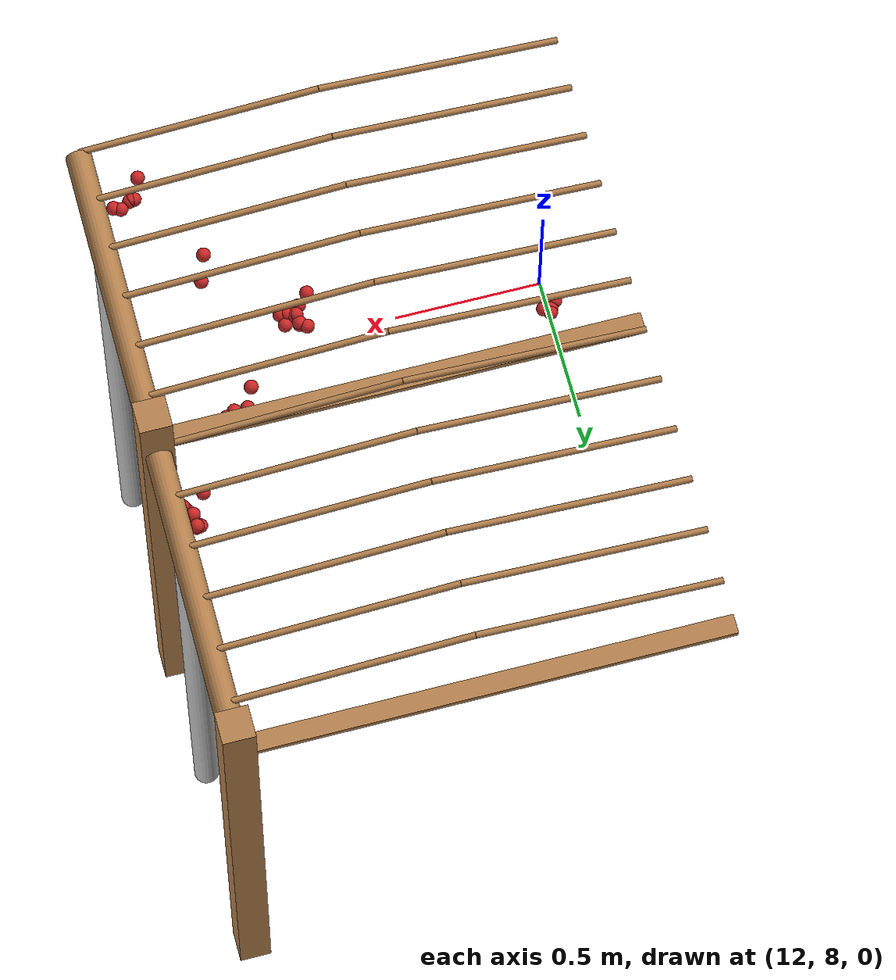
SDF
<sdf version="1.4">
 <model name="pergola">
  <include><name>post_108</name><pose>13.5 9.0 0 0 0 0</pose><uri>model://post</uri></include>
  <include><name>post_109</name><pose>13.5 10.0 0 0 0 0</pose><uri>model://post</uri></include>
  <link name="beam_97">
   <pose>12.75 9.0 1.81 0 0 0</pose>
   <collision name="collision"><geometry><box><size>1.5 0.06 0.02</size></box></geometry></collision>
   <visual name="visual">
    <geometry><box><size>1.5 0.06 0.02</size></box></geometry>
    <material><script><name>Gazebo/Wood</name></script></material>
   </visual>
   <inertial>
    <mass>5</mass>
    <inertia>
     <ixx>0.0016666666666666668</ixx>
     <ixy>0.0</ixy>
     <ixz>0.0</ixz>
     <iyy>0.9390000000000001</iyy>
     <iyz>0.0</iyz>
     <izz>0.9376666666666665</izz>
    </inertia>
   </inertial>
  </link>
  <link name="beam_98">
   <pose>12.75 10.0 1.81 0 0 0</pose>
   <collision name="collision"><geometry><box><size>1.5 0.06 0.02</size></box></geometry></collision>
   <visual name="visual">
    <geometry><box><size>1.5 0.06 0.02</size></box></geometry>
    <material><script><name>Gazebo/Wood</name></script></material>
   </visual>
   <inertial>
    <mass>5</mass>
    <inertia>
     <ixx>0.0016666666666666668</ixx>
     <ixy>0.0</ixy>
     <ixz>0.0</ixz>
     <iyy>0.9390000000000001</iyy>
     <iyz>0.0</iyz>
     <izz>0.9376666666666665</izz>
    </inertia>
   </inertial>
  </link>
  <include><name>tree_98</name><pose>13.5 8.4 0 0 0 0</pose><uri>model://tree_trunk</uri></include>
  <include><name>tree_99</name><pose>13.5 9.4 0 0 0 0</pose><uri>model://tree_trunk</uri></include>
  <link name="baseBranch_98">
   <pose>13.5 8.5 1.8 1.5707963267948966 0 0</pose>
   <collision name="collision">
    <geometry><cylinder><radius>0.04</radius><length>0.94</length></cylinder></geometry>
   </collision>
   <visual name="visual">
    <geometry><cylinder><radius>0.04</radius><length>0.94</length></cylinder></geometry>
    <material><script><name>Gazebo/WoodFloor</name></script></material>
   </visual>
   <inertial>
    <mass>10</mass>
    <inertia>
     <ixx>0.7403333333333334</ixx>
     <ixy>0.0</ixy>
     <ixz>0.0</ixz>
     <iyy>0.7403333333333334</iyy>
     <iyz>0.0</iyz>
     <izz>0.008</izz>
    </inertia>
   </inertial>
  </link>
  <link name="baseBranch_99">
   <pose>13.5 9.5 1.8 1.5707963267948966 0 0</pose>
   <collision name="collision">
    <geometry><cylinder><radius>0.04</radius><length>0.94</length></cylinder></geometry>
   </collision>
   <visual name="visual">
    <geometry><cylinder><radius>0.04</radius><length>0.94</length></cylinder></geometry>
    <material><script><name>Gazebo/WoodFloor</name></script></material>
   </visual>
   <inertial>
    <mass>10</mass>
    <inertia>
     <ixx>0.7403333333333334</ixx>
     <ixy>0.0</ixy>
     <ixz>0.0</ixz>
     <iyy>0.7403333333333334</iyy>
     <iyz>0.0</iyz>
     <izz>0.008</izz>
    </inertia>
   </inertial>
  </link>
  <link name="vine_1056">
   <pose>12.375 8.03 1.85 0 1.5042281630190728 0</pose>
   <collision name="collision">
    <geometry><cylinder><radius>0.01</radius><length>0.7516648189186453</length></cylinder></geometry>
   </collision>
   <visual name="visual">
    <geometry><cylinder><radius>0.01</radius><length>0.7516648189186453</length></cylinder></geometry>
    <material><script><name>Gazebo/WoodFloor</name></script></material>
   </visual>
   <inertial>
    <mass>5</mass>
    <inertia>
     <ixx>0.23554166666666657</ixx>
     <ixy>0.0</ixy>
     <ixz>0.0</ixz>
     <iyy>0.23554166666666657</iyy>
     <iyz>0.0</iyz>
     <izz>0.00025</izz>
    </inertia>
   </inertial>
  </link>
  <link name="vine_1057">
   <pose>13.125 8.03 1.85 0 -1.5042281630190728 0</pose>
   <collision name="collision">
    <geometry><cylinder><radius>0.01</radius><length>0.7516648189186453</length></cylinder></geometry>
   </collision>
   <visual name="visual">
    <geometry><cylinder><radius>0.01</radius><length>0.7516648189186453</length></cylinder></geometry>
    <material><script><name>Gazebo/WoodFloor</name></script></material>
   </visual>
   <inertial>
    <mass>5</mass>
    <inertia>
     <ixx>0.23554166666666657</ixx>
     <ixy>0.0</ixy>
     <ixz>0.0</ixz>
     <iyy>0.23554166666666657</iyy>
     <iyz>0.0</iyz>
     <izz>0.00025</izz>
    </inertia>
   </inertial>
  </link>
  <link name="vine_1058">
   <pose>12.375 8.196666666666665 1.85 0 1.5042281630190728 0</pose>
   <collision name="collision">
    <geometry><cylinder><radius>0.01</radius><length>0.7516648189186453</length></cylinder></geometry>
   </collision>
   <visual name="visual">
    <geometry><cylinder><radius>0.01</radius><length>0.7516648189186453</length></cylinder></geometry>
    <material><script><name>Gazebo/WoodFloor</name></script></material>
   </visual>
   <inertial>
    <mass>5</mass>
    <inertia>
     <ixx>0.23554166666666657</ixx>
     <ixy>0.0</ixy>
     <ixz>0.0</ixz>
     <iyy>0.23554166666666657</iyy>
     <iyz>0.0</iyz>
     <izz>0.00025</izz>
    </inertia>
   </inertial>
  </link>
  <link name="vine_1059">
   <pose>13.125 8.196666666666665 1.85 0 -1.5042281630190728 0</pose>
   <collision name="collision">
    <geometry><cylinder><radius>0.01</radius><length>0.7516648189186453</length></cylinder></geometry>
   </collision>
   <visual name="visual">
    <geometry><cylinder><radius>0.01</radius><length>0.7516648189186453</length></cylinder></geometry>
    <material><script><name>Gazebo/WoodFloor</name></script></material>
   </visual>
   <inertial>
    <mass>5</mass>
    <inertia>
     <ixx>0.23554166666666657</ixx>
     <ixy>0.0</ixy>
     <ixz>0.0</ixz>
     <iyy>0.23554166666666657</iyy>
     <iyz>0.0</iyz>
     <izz>0.00025</izz>
    </inertia>
   </inertial>
  </link>
  <link name="vine_1060">
   <pose>12.375 8.363333333333332 1.85 0 1.5042281630190728 0</pose>
   <collision name="collision">
    <geometry><cylinder><radius>0.01</radius><length>0.7516648189186453</length></cylinder></geometry>
   </collision>
   <visual name="visual">
    <geometry><cylinder><radius>0.01</radius><length>0.7516648189186453</length></cylinder></geometry>
    <material><script><name>Gazebo/WoodFloor</name></script></material>
   </visual>
   <inertial>
    <mass>5</mass>
    <inertia>
     <ixx>0.23554166666666657</ixx>
     <ixy>0.0</ixy>
     <ixz>0.0</ixz>
     <iyy>0.23554166666666657</iyy>
     <iyz>0.0</iyz>
     <izz>0.00025</izz>
    </inertia>
   </inertial>
  </link>
  <link name="vine_1061">
   <pose>13.125 8.363333333333332 1.85 0 -1.5042281630190728 0</pose>
   <collision name="collision">
    <geometry><cylinder><radius>0.01</radius><length>0.7516648189186453</length></cylinder></geometry>
   </collision>
   <visual name="visual">
    <geometry><cylinder><radius>0.01</radius><length>0.7516648189186453</length></cylinder></geometry>
    <material><script><name>Gazebo/WoodFloor</name></script></material>
   </visual>
   <inertial>
    <mass>5</mass>
    <inertia>
     <ixx>0.23554166666666657</ixx>
     <ixy>0.0</ixy>
     <ixz>0.0</ixz>
     <iyy>0.23554166666666657</iyy>
     <iyz>0.0</iyz>
     <izz>0.00025</izz>
    </inertia>
   </inertial>
  </link>
  <link name="vine_1062">
   <pose>12.375 8.53 1.85 0 1.5042281630190728 0</pose>
   <collision name="collision">
    <geometry><cylinder><radius>0.01</radius><length>0.7516648189186453</length></cylinder></geometry>
   </collision>
   <visual name="visual">
    <geometry><cylinder><radius>0.01</radius><length>0.7516648189186453</length></cylinder></geometry>
    <material><script><name>Gazebo/WoodFloor</name></script></material>
   </visual>
   <inertial>
    <mass>5</mass>
    <inertia>
     <ixx>0.23554166666666657</ixx>
     <ixy>0.0</ixy>
     <ixz>0.0</ixz>
     <iyy>0.23554166666666657</iyy>
     <iyz>0.0</iyz>
     <izz>0.00025</izz>
    </inertia>
   </inertial>
  </link>
  <link name="vine_1063">
   <pose>13.125 8.53 1.85 0 -1.5042281630190728 0</pose>
   <collision name="collision">
    <geometry><cylinder><radius>0.01</radius><length>0.7516648189186453</length></cylinder></geometry>
   </collision>
   <visual name="visual">
    <geometry><cylinder><radius>0.01</radius><length>0.7516648189186453</length></cylinder></geometry>
    <material><script><name>Gazebo/WoodFloor</name></script></material>
   </visual>
   <inertial>
    <mass>5</mass>
    <inertia>
     <ixx>0.23554166666666657</ixx>
     <ixy>0.0</ixy>
     <ixz>0.0</ixz>
     <iyy>0.23554166666666657</iyy>
     <iyz>0.0</iyz>
     <izz>0.00025</izz>
    </inertia>
   </inertial>
  </link>
  <link name="vine_1064">
   <pose>12.375 8.696666666666665 1.85 0 1.5042281630190728 0</pose>
   <collision name="collision">
    <geometry><cylinder><radius>0.01</radius><length>0.7516648189186453</length></cylinder></geometry>
   </collision>
   <visual name="visual">
    <geometry><cylinder><radius>0.01</radius><length>0.7516648189186453</length></cylinder></geometry>
    <material><script><name>Gazebo/WoodFloor</name></script></material>
   </visual>
   <inertial>
    <mass>5</mass>
    <inertia>
     <ixx>0.23554166666666657</ixx>
     <ixy>0.0</ixy>
     <ixz>0.0</ixz>
     <iyy>0.23554166666666657</iyy>
     <iyz>0.0</iyz>
     <izz>0.00025</izz>
    </inertia>
   </inertial>
  </link>
  <link name="vine_1065">
   <pose>13.125 8.696666666666665 1.85 0 -1.5042281630190728 0</pose>
   <collision name="collision">
    <geometry><cylinder><radius>0.01</radius><length>0.7516648189186453</length></cylinder></geometry>
   </collision>
   <visual name="visual">
    <geometry><cylinder><radius>0.01</radius><length>0.7516648189186453</length></cylinder></geometry>
    <material><script><name>Gazebo/WoodFloor</name></script></material>
   </visual>
   <inertial>
    <mass>5</mass>
    <inertia>
     <ixx>0.23554166666666657</ixx>
     <ixy>0.0</ixy>
     <ixz>0.0</ixz>
     <iyy>0.23554166666666657</iyy>
     <iyz>0.0</iyz>
     <izz>0.00025</izz>
    </inertia>
   </inertial>
  </link>
  <link name="vine_1066">
   <pose>12.375 8.863333333333332 1.85 0 1.5042281630190728 0</pose>
   <collision name="collision">
    <geometry><cylinder><radius>0.01</radius><length>0.7516648189186453</length></cylinder></geometry>
   </collision>
   <visual name="visual">
    <geometry><cylinder><radius>0.01</radius><length>0.7516648189186453</length></cylinder></geometry>
    <material><script><name>Gazebo/WoodFloor</name></script></material>
   </visual>
   <inertial>
    <mass>5</mass>
    <inertia>
     <ixx>0.23554166666666657</ixx>
     <ixy>0.0</ixy>
     <ixz>0.0</ixz>
     <iyy>0.23554166666666657</iyy>
     <iyz>0.0</iyz>
     <izz>0.00025</izz>
    </inertia>
   </inertial>
  </link>
  <link name="vine_1067">
   <pose>13.125 8.863333333333332 1.85 0 -1.5042281630190728 0</pose>
   <collision name="collision">
    <geometry><cylinder><radius>0.01</radius><length>0.7516648189186453</length></cylinder></geometry>
   </collision>
   <visual name="visual">
    <geometry><cylinder><radius>0.01</radius><length>0.7516648189186453</length></cylinder></geometry>
    <material><script><name>Gazebo/WoodFloor</name></script></material>
   </visual>
   <inertial>
    <mass>5</mass>
    <inertia>
     <ixx>0.23554166666666657</ixx>
     <ixy>0.0</ixy>
     <ixz>0.0</ixz>
     <iyy>0.23554166666666657</iyy>
     <iyz>0.0</iyz>
     <izz>0.00025</izz>
    </inertia>
   </inertial>
  </link>
  <link name="vine_1068">
   <pose>12.375 9.03 1.85 0 1.5042281630190728 0</pose>
   <collision name="collision">
    <geometry><cylinder><radius>0.01</radius><length>0.7516648189186453</length></cylinder></geometry>
   </collision>
   <visual name="visual">
    <geometry><cylinder><radius>0.01</radius><length>0.7516648189186453</length></cylinder></geometry>
    <material><script><name>Gazebo/WoodFloor</name></script></material>
   </visual>
   <inertial>
    <mass>5</mass>
    <inertia>
     <ixx>0.23554166666666657</ixx>
     <ixy>0.0</ixy>
     <ixz>0.0</ixz>
     <iyy>0.23554166666666657</iyy>
     <iyz>0.0</iyz>
     <izz>0.00025</izz>
    </inertia>
   </inertial>
  </link>
  <link name="vine_1069">
   <pose>13.125 9.03 1.85 0 -1.5042281630190728 0</pose>
   <collision name="collision">
    <geometry><cylinder><radius>0.01</radius><length>0.7516648189186453</length></cylinder></geometry>
   </collision>
   <visual name="visual">
    <geometry><cylinder><radius>0.01</radius><length>0.7516648189186453</length></cylinder></geometry>
    <material><script><name>Gazebo/WoodFloor</name></script></material>
   </visual>
   <inertial>
    <mass>5</mass>
    <inertia>
     <ixx>0.23554166666666657</ixx>
     <ixy>0.0</ixy>
     <ixz>0.0</ixz>
     <iyy>0.23554166666666657</iyy>
     <iyz>0.0</iyz>
     <izz>0.00025</izz>
    </inertia>
   </inertial>
  </link>
  <link name="vine_1070">
   <pose>12.375 9.196666666666665 1.85 0 1.5042281630190728 0</pose>
   <collision name="collision">
    <geometry><cylinder><radius>0.01</radius><length>0.7516648189186453</length></cylinder></geometry>
   </collision>
   <visual name="visual">
    <geometry><cylinder><radius>0.01</radius><length>0.7516648189186453</length></cylinder></geometry>
    <material><script><name>Gazebo/WoodFloor</name></script></material>
   </visual>
   <inertial>
    <mass>5</mass>
    <inertia>
     <ixx>0.23554166666666657</ixx>
     <ixy>0.0</ixy>
     <ixz>0.0</ixz>
     <iyy>0.23554166666666657</iyy>
     <iyz>0.0</iyz>
     <izz>0.00025</izz>
    </inertia>
   </inertial>
  </link>
  <link name="vine_1071">
   <pose>13.125 9.196666666666665 1.85 0 -1.5042281630190728 0</pose>
   <collision name="collision">
    <geometry><cylinder><radius>0.01</radius><length>0.7516648189186453</length></cylinder></geometry>
   </collision>
   <visual name="visual">
    <geometry><cylinder><radius>0.01</radius><length>0.7516648189186453</length></cylinder></geometry>
    <material><script><name>Gazebo/WoodFloor</name></script></material>
   </visual>
   <inertial>
    <mass>5</mass>
    <inertia>
     <ixx>0.23554166666666657</ixx>
     <ixy>0.0</ixy>
     <ixz>0.0</ixz>
     <iyy>0.23554166666666657</iyy>
     <iyz>0.0</iyz>
     <izz>0.00025</izz>
    </inertia>
   </inertial>
  </link>
  <link name="vine_1072">
   <pose>12.375 9.363333333333332 1.85 0 1.5042281630190728 0</pose>
   <collision name="collision">
    <geometry><cylinder><radius>0.01</radius><length>0.7516648189186453</length></cylinder></geometry>
   </collision>
   <visual name="visual">
    <geometry><cylinder><radius>0.01</radius><length>0.7516648189186453</length></cylinder></geometry>
    <material><script><name>Gazebo/WoodFloor</name></script></material>
   </visual>
   <inertial>
    <mass>5</mass>
    <inertia>
     <ixx>0.23554166666666657</ixx>
     <ixy>0.0</ixy>
     <ixz>0.0</ixz>
     <iyy>0.23554166666666657</iyy>
     <iyz>0.0</iyz>
     <izz>0.00025</izz>
    </inertia>
   </inertial>
  </link>
  <link name="vine_1073">
   <pose>13.125 9.363333333333332 1.85 0 -1.5042281630190728 0</pose>
   <collision name="collision">
    <geometry><cylinder><radius>0.01</radius><length>0.7516648189186453</length></cylinder></geometry>
   </collision>
   <visual name="visual">
    <geometry><cylinder><radius>0.01</radius><length>0.7516648189186453</length></cylinder></geometry>
    <material><script><name>Gazebo/WoodFloor</name></script></material>
   </visual>
   <inertial>
    <mass>5</mass>
    <inertia>
     <ixx>0.23554166666666657</ixx>
     <ixy>0.0</ixy>
     <ixz>0.0</ixz>
     <iyy>0.23554166666666657</iyy>
     <iyz>0.0</iyz>
     <izz>0.00025</izz>
    </inertia>
   </inertial>
  </link>
  <link name="vine_1074">
   <pose>12.375 9.53 1.85 0 1.5042281630190728 0</pose>
   <collision name="collision">
    <geometry><cylinder><radius>0.01</radius><length>0.7516648189186453</length></cylinder></geometry>
   </collision>
   <visual name="visual">
    <geometry><cylinder><radius>0.01</radius><length>0.7516648189186453</length></cylinder></geometry>
    <material><script><name>Gazebo/WoodFloor</name></script></material>
   </visual>
   <inertial>
    <mass>5</mass>
    <inertia>
     <ixx>0.23554166666666657</ixx>
     <ixy>0.0</ixy>
     <ixz>0.0</ixz>
     <iyy>0.23554166666666657</iyy>
     <iyz>0.0</iyz>
     <izz>0.00025</izz>
    </inertia>
   </inertial>
  </link>
  <link name="vine_1075">
   <pose>13.125 9.53 1.85 0 -1.5042281630190728 0</pose>
   <collision name="collision">
    <geometry><cylinder><radius>0.01</radius><length>0.7516648189186453</length></cylinder></geometry>
   </collision>
   <visual name="visual">
    <geometry><cylinder><radius>0.01</radius><length>0.7516648189186453</length></cylinder></geometry>
    <material><script><name>Gazebo/WoodFloor</name></script></material>
   </visual>
   <inertial>
    <mass>5</mass>
    <inertia>
     <ixx>0.23554166666666657</ixx>
     <ixy>0.0</ixy>
     <ixz>0.0</ixz>
     <iyy>0.23554166666666657</iyy>
     <iyz>0.0</iyz>
     <izz>0.00025</izz>
    </inertia>
   </inertial>
  </link>
  <link name="vine_1076">
   <pose>12.375 9.696666666666665 1.85 0 1.5042281630190728 0</pose>
   <collision name="collision">
    <geometry><cylinder><radius>0.01</radius><length>0.7516648189186453</length></cylinder></geometry>
   </collision>
   <visual name="visual">
    <geometry><cylinder><radius>0.01</radius><length>0.7516648189186453</length></cylinder></geometry>
    <material><script><name>Gazebo/WoodFloor</name></script></material>
   </visual>
   <inertial>
    <mass>5</mass>
    <inertia>
     <ixx>0.23554166666666657</ixx>
     <ixy>0.0</ixy>
     <ixz>0.0</ixz>
     <iyy>0.23554166666666657</iyy>
     <iyz>0.0</iyz>
     <izz>0.00025</izz>
    </inertia>
   </inertial>
  </link>
  <link name="vine_1077">
   <pose>13.125 9.696666666666665 1.85 0 -1.5042281630190728 0</pose>
   <collision name="collision">
    <geometry><cylinder><radius>0.01</radius><length>0.7516648189186453</length></cylinder></geometry>
   </collision>
   <visual name="visual">
    <geometry><cylinder><radius>0.01</radius><length>0.7516648189186453</length></cylinder></geometry>
    <material><script><name>Gazebo/WoodFloor</name></script></material>
   </visual>
   <inertial>
    <mass>5</mass>
    <inertia>
     <ixx>0.23554166666666657</ixx>
     <ixy>0.0</ixy>
     <ixz>0.0</ixz>
     <iyy>0.23554166666666657</iyy>
     <iyz>0.0</iyz>
     <izz>0.00025</izz>
    </inertia>
   </inertial>
  </link>
  <link name="vine_1078">
   <pose>12.375 9.863333333333332 1.85 0 1.5042281630190728 0</pose>
   <collision name="collision">
    <geometry><cylinder><radius>0.01</radius><length>0.7516648189186453</length></cylinder></geometry>
   </collision>
   <visual name="visual">
    <geometry><cylinder><radius>0.01</radius><length>0.7516648189186453</length></cylinder></geometry>
    <material><script><name>Gazebo/WoodFloor</name></script></material>
   </visual>
   <inertial>
    <mass>5</mass>
    <inertia>
     <ixx>0.23554166666666657</ixx>
     <ixy>0.0</ixy>
     <ixz>0.0</ixz>
     <iyy>0.23554166666666657</iyy>
     <iyz>0.0</iyz>
     <izz>0.00025</izz>
    </inertia>
   </inertial>
  </link>
  <link name="vine_1079">
   <pose>13.125 9.863333333333332 1.85 0 -1.5042281630190728 0</pose>
   <collision name="collision">
    <geometry><cylinder><radius>0.01</radius><length>0.7516648189186453</length></cylinder></geometry>
   </collision>
   <visual name="visual">
    <geometry><cylinder><radius>0.01</radius><length>0.7516648189186453</length></cylinder></geometry>
    <material><script><name>Gazebo/WoodFloor</name></script></material>
   </visual>
   <inertial>
    <mass>5</mass>
    <inertia>
     <ixx>0.23554166666666657</ixx>
     <ixy>0.0</ixy>
     <ixz>0.0</ixz>
     <iyy>0.23554166666666657</iyy>
     <iyz>0.0</iyz>
     <izz>0.00025</izz>
    </inertia>
   </inertial>
  </link>
  <link name="fruit_10">
   <pose>13.329321426453612 8.047144984852528 1.5966788791327278 0 0 0</pose>
   <collision name="fruit_collision_10"><geometry><sphere><radius>0.022</radius></sphere></geometry></collision>
   <visual name="visual">
    <geometry><sphere><radius>0.022</radius></sphere></geometry>
    <material><script><name>Gazebo/Red</name></script></material>
   </visual>
   <inertial>
    <mass>0.05</mass>
    <inertia>
     <ixx>9.679999999999999e-06</ixx>
     <ixy>0.0</ixy>
     <ixz>0.0</ixz>
     <iyy>9.679999999999999e-06</iyy>
     <iyz>0.0</iyz>
     <izz>9.679999999999999e-06</izz>
    </inertia>
   </inertial>
   <sensor name="fruit_contact_10" type="contact">
    <contact><collision>fruit_collision_10</collision></contact>
   </sensor>
  </link>
  <link name="fruit_63">
   <pose>13.165242712962897 8.821679316423879 1.614728353815618 0 0 0</pose>
   <collision name="fruit_collision_63"><geometry><sphere><radius>0.022</radius></sphere></geometry></collision>
   <visual name="visual">
    <geometry><sphere><radius>0.022</radius></sphere></geometry>
    <material><script><name>Gazebo/Red</name></script></material>
   </visual>
   <inertial>
    <mass>0.05</mass>
    <inertia>
     <ixx>9.679999999999999e-06</ixx>
     <ixy>0.0</ixy>
     <ixz>0.0</ixz>
     <iyy>9.679999999999999e-06</iyy>
     <iyz>0.0</iyz>
     <izz>9.679999999999999e-06</izz>
    </inertia>
   </inertial>
   <sensor name="fruit_contact_63" type="contact">
    <contact><collision>fruit_collision_63</collision></contact>
   </sensor>
  </link>
  <link name="fruit_74">
   <pose>13.37907343484381 9.069850396240946 1.4949833985158347 0 0 0</pose>
   <collision name="fruit_collision_74"><geometry><sphere><radius>0.022</radius></sphere></geometry></collision>
   <visual name="visual">
    <geometry><sphere><radius>0.022</radius></sphere></geometry>
    <material><script><name>Gazebo/Red</name></script></material>
   </visual>
   <inertial>
    <mass>0.05</mass>
    <inertia>
     <ixx>9.679999999999999e-06</ixx>
     <ixy>0.0</ixy>
     <ixz>0.0</ixz>
     <iyy>9.679999999999999e-06</iyy>
     <iyz>0.0</iyz>
     <izz>9.679999999999999e-06</izz>
    </inertia>
   </inertial>
   <sensor name="fruit_contact_74" type="contact">
    <contact><collision>fruit_collision_74</collision></contact>
   </sensor>
  </link>
  <link name="fruit_85">
   <pose>13.201479795939997 8.378036483084028 1.6558601834220557 0 0 0</pose>
   <collision name="fruit_collision_85"><geometry><sphere><radius>0.022</radius></sphere></geometry></collision>
   <visual name="visual">
    <geometry><sphere><radius>0.022</radius></sphere></geometry>
    <material><script><name>Gazebo/Red</name></script></material>
   </visual>
   <inertial>
    <mass>0.05</mass>
    <inertia>
     <ixx>9.679999999999999e-06</ixx>
     <ixy>0.0</ixy>
     <ixz>0.0</ixz>
     <iyy>9.679999999999999e-06</iyy>
     <iyz>0.0</iyz>
     <izz>9.679999999999999e-06</izz>
    </inertia>
   </inertial>
   <sensor name="fruit_contact_85" type="contact">
    <contact><collision>fruit_collision_85</collision></contact>
   </sensor>
  </link>
  <link name="fruit_103">
   <pose>12.9244901801602 8.551619985005445 1.5917667766445973 0 0 0</pose>
   <collision name="fruit_collision_103"><geometry><sphere><radius>0.022</radius></sphere></geometry></collision>
   <visual name="visual">
    <geometry><sphere><radius>0.022</radius></sphere></geometry>
    <material><script><name>Gazebo/Red</name></script></material>
   </visual>
   <inertial>
    <mass>0.05</mass>
    <inertia>
     <ixx>9.679999999999999e-06</ixx>
     <ixy>0.0</ixy>
     <ixz>0.0</ixz>
     <iyy>9.679999999999999e-06</iyy>
     <iyz>0.0</iyz>
     <izz>9.679999999999999e-06</izz>
    </inertia>
   </inertial>
   <sensor name="fruit_contact_103" type="contact">
    <contact><collision>fruit_collision_103</collision></contact>
   </sensor>
  </link>
  <link name="fruit_123">
   <pose>12.999408649313162 8.599102589486247 1.5817729806806546 0 0 0</pose>
   <collision name="fruit_collision_123"><geometry><sphere><radius>0.022</radius></sphere></geometry></collision>
   <visual name="visual">
    <geometry><sphere><radius>0.022</radius></sphere></geometry>
    <material><script><name>Gazebo/Red</name></script></material>
   </visual>
   <inertial>
    <mass>0.05</mass>
    <inertia>
     <ixx>9.679999999999999e-06</ixx>
     <ixy>0.0</ixy>
     <ixz>0.0</ixz>
     <iyy>9.679999999999999e-06</iyy>
     <iyz>0.0</iyz>
     <izz>9.679999999999999e-06</izz>
    </inertia>
   </inertial>
   <sensor name="fruit_contact_123" type="contact">
    <contact><collision>fruit_collision_123</collision></contact>
   </sensor>
  </link>
  <link name="fruit_174">
   <pose>13.190602232047054 8.878731097815677 1.6005535503397694 0 0 0</pose>
   <collision name="fruit_collision_174"><geometry><sphere><radius>0.022</radius></sphere></geometry></collision>
   <visual name="visual">
    <geometry><sphere><radius>0.022</radius></sphere></geometry>
    <material><script><name>Gazebo/Red</name></script></material>
   </visual>
   <inertial>
    <mass>0.05</mass>
    <inertia>
     <ixx>9.679999999999999e-06</ixx>
     <ixy>0.0</ixy>
     <ixz>0.0</ixz>
     <iyy>9.679999999999999e-06</iyy>
     <iyz>0.0</iyz>
     <izz>9.679999999999999e-06</izz>
    </inertia>
   </inertial>
   <sensor name="fruit_contact_174" type="contact">
    <contact><collision>fruit_collision_174</collision></contact>
   </sensor>
  </link>
  <link name="fruit_179">
   <pose>12.94857421609699 8.654718999119874 1.5812832449179905 0 0 0</pose>
   <collision name="fruit_collision_179"><geometry><sphere><radius>0.022</radius></sphere></geometry></collision>
   <visual name="visual">
    <geometry><sphere><radius>0.022</radius></sphere></geometry>
    <material><script><name>Gazebo/Red</name></script></material>
   </visual>
   <inertial>
    <mass>0.05</mass>
    <inertia>
     <ixx>9.679999999999999e-06</ixx>
     <ixy>0.0</ixy>
     <ixz>0.0</ixz>
     <iyy>9.679999999999999e-06</iyy>
     <iyz>0.0</iyz>
     <izz>9.679999999999999e-06</izz>
    </inertia>
   </inertial>
   <sensor name="fruit_contact_179" type="contact">
    <contact><collision>fruit_collision_179</collision></contact>
   </sensor>
  </link>
  <link name="fruit_185">
   <pose>12.24890191570354 8.803070493715998 1.6321826341761227 0 0 0</pose>
   <collision name="fruit_collision_185"><geometry><sphere><radius>0.022</radius></sphere></geometry></collision>
   <visual name="visual">
    <geometry><sphere><radius>0.022</radius></sphere></geometry>
    <material><script><name>Gazebo/Red</name></script></material>
   </visual>
   <inertial>
    <mass>0.05</mass>
    <inertia>
     <ixx>9.679999999999999e-06</ixx>
     <ixy>0.0</ixy>
     <ixz>0.0</ixz>
     <iyy>9.679999999999999e-06</iyy>
     <iyz>0.0</iyz>
     <izz>9.679999999999999e-06</izz>
    </inertia>
   </inertial>
   <sensor name="fruit_contact_185" type="contact">
    <contact><collision>fruit_collision_185</collision></contact>
   </sensor>
  </link>
  <link name="fruit_190">
   <pose>13.411987174656007 9.165693170127664 1.479730642636373 0 0 0</pose>
   <collision name="fruit_collision_190"><geometry><sphere><radius>0.022</radius></sphere></geometry></collision>
   <visual name="visual">
    <geometry><sphere><radius>0.022</radius></sphere></geometry>
    <material><script><name>Gazebo/Red</name></script></material>
   </visual>
   <inertial>
    <mass>0.05</mass>
    <inertia>
     <ixx>9.679999999999999e-06</ixx>
     <ixy>0.0</ixy>
     <ixz>0.0</ixz>
     <iyy>9.679999999999999e-06</iyy>
     <iyz>0.0</iyz>
     <izz>9.679999999999999e-06</izz>
    </inertia>
   </inertial>
   <sensor name="fruit_contact_190" type="contact">
    <contact><collision>fruit_collision_190</collision></contact>
   </sensor>
  </link>
  <link name="fruit_193">
   <pose>13.449592678856531 9.098295556765164 1.4944303208177816 0 0 0</pose>
   <collision name="fruit_collision_193"><geometry><sphere><radius>0.022</radius></sphere></geometry></collision>
   <visual name="visual">
    <geometry><sphere><radius>0.022</radius></sphere></geometry>
    <material><script><name>Gazebo/Red</name></script></material>
   </visual>
   <inertial>
    <mass>0.05</mass>
    <inertia>
     <ixx>9.679999999999999e-06</ixx>
     <ixy>0.0</ixy>
     <ixz>0.0</ixz>
     <iyy>9.679999999999999e-06</iyy>
     <iyz>0.0</iyz>
     <izz>9.679999999999999e-06</izz>
    </inertia>
   </inertial>
   <sensor name="fruit_contact_193" type="contact">
    <contact><collision>fruit_collision_193</collision></contact>
   </sensor>
  </link>
  <link name="fruit_199">
   <pose>12.98257524595784 8.606627680867618 1.5810318512763037 0 0 0</pose>
   <collision name="fruit_collision_199"><geometry><sphere><radius>0.022</radius></sphere></geometry></collision>
   <visual name="visual">
    <geometry><sphere><radius>0.022</radius></sphere></geometry>
    <material><script><name>Gazebo/Red</name></script></material>
   </visual>
   <inertial>
    <mass>0.05</mass>
    <inertia>
     <ixx>9.679999999999999e-06</ixx>
     <ixy>0.0</ixy>
     <ixz>0.0</ixz>
     <iyy>9.679999999999999e-06</iyy>
     <iyz>0.0</iyz>
     <izz>9.679999999999999e-06</izz>
    </inertia>
   </inertial>
   <sensor name="fruit_contact_199" type="contact">
    <contact><collision>fruit_collision_199</collision></contact>
   </sensor>
  </link>
  <link name="fruit_224">
   <pose>12.972610327451168 8.610550725740103 1.5862290762617826 0 0 0</pose>
   <collision name="fruit_collision_224"><geometry><sphere><radius>0.022</radius></sphere></geometry></collision>
   <visual name="visual">
    <geometry><sphere><radius>0.022</radius></sphere></geometry>
    <material><script><name>Gazebo/Red</name></script></material>
   </visual>
   <inertial>
    <mass>0.05</mass>
    <inertia>
     <ixx>9.679999999999999e-06</ixx>
     <ixy>0.0</ixy>
     <ixz>0.0</ixz>
     <iyy>9.679999999999999e-06</iyy>
     <iyz>0.0</iyz>
     <izz>9.679999999999999e-06</izz>
    </inertia>
   </inertial>
   <sensor name="fruit_contact_224" type="contact">
    <contact><collision>fruit_collision_224</collision></contact>
   </sensor>
  </link>
  <link name="fruit_232">
   <pose>13.227936389494216 8.453877060970793 1.6368086975340057 0 0 0</pose>
   <collision name="fruit_collision_232"><geometry><sphere><radius>0.022</radius></sphere></geometry></collision>
   <visual name="visual">
    <geometry><sphere><radius>0.022</radius></sphere></geometry>
    <material><script><name>Gazebo/Red</name></script></material>
   </visual>
   <inertial>
    <mass>0.05</mass>
    <inertia>
     <ixx>9.679999999999999e-06</ixx>
     <ixy>0.0</ixy>
     <ixz>0.0</ixz>
     <iyy>9.679999999999999e-06</iyy>
     <iyz>0.0</iyz>
     <izz>9.679999999999999e-06</izz>
    </inertia>
   </inertial>
   <sensor name="fruit_contact_232" type="contact">
    <contact><collision>fruit_collision_232</collision></contact>
   </sensor>
  </link>
  <link name="fruit_258">
   <pose>13.356132960590609 8.113737844083222 1.5922443038559382 0 0 0</pose>
   <collision name="fruit_collision_258"><geometry><sphere><radius>0.022</radius></sphere></geometry></collision>
   <visual name="visual">
    <geometry><sphere><radius>0.022</radius></sphere></geometry>
    <material><script><name>Gazebo/Red</name></script></material>
   </visual>
   <inertial>
    <mass>0.05</mass>
    <inertia>
     <ixx>9.679999999999999e-06</ixx>
     <ixy>0.0</ixy>
     <ixz>0.0</ixz>
     <iyy>9.679999999999999e-06</iyy>
     <iyz>0.0</iyz>
     <izz>9.679999999999999e-06</izz>
    </inertia>
   </inertial>
   <sensor name="fruit_contact_258" type="contact">
    <contact><collision>fruit_collision_258</collision></contact>
   </sensor>
  </link>
  <link name="fruit_261">
   <pose>13.42310629660186 9.16944264173116 1.494952673121965 0 0 0</pose>
   <collision name="fruit_collision_261"><geometry><sphere><radius>0.022</radius></sphere></geometry></collision>
   <visual name="visual">
    <geometry><sphere><radius>0.022</radius></sphere></geometry>
    <material><script><name>Gazebo/Red</name></script></material>
   </visual>
   <inertial>
    <mass>0.05</mass>
    <inertia>
     <ixx>9.679999999999999e-06</ixx>
     <ixy>0.0</ixy>
     <ixz>0.0</ixz>
     <iyy>9.679999999999999e-06</iyy>
     <iyz>0.0</iyz>
     <izz>9.679999999999999e-06</izz>
    </inertia>
   </inertial>
   <sensor name="fruit_contact_261" type="contact">
    <contact><collision>fruit_collision_261</collision></contact>
   </sensor>
  </link>
  <link name="fruit_276">
   <pose>13.403052891833365 8.136765980618287 1.5944473247980044 0 0 0</pose>
   <collision name="fruit_collision_276"><geometry><sphere><radius>0.022</radius></sphere></geometry></collision>
   <visual name="visual">
    <geometry><sphere><radius>0.022</radius></sphere></geometry>
    <material><script><name>Gazebo/Red</name></script></material>
   </visual>
   <inertial>
    <mass>0.05</mass>
    <inertia>
     <ixx>9.679999999999999e-06</ixx>
     <ixy>0.0</ixy>
     <ixz>0.0</ixz>
     <iyy>9.679999999999999e-06</iyy>
     <iyz>0.0</iyz>
     <izz>9.679999999999999e-06</izz>
    </inertia>
   </inertial>
   <sensor name="fruit_contact_276" type="contact">
    <contact><collision>fruit_collision_276</collision></contact>
   </sensor>
  </link>
  <link name="fruit_278">
   <pose>12.969438356378355 8.637442688368246 1.5826847931275867 0 0 0</pose>
   <collision name="fruit_collision_278"><geometry><sphere><radius>0.022</radius></sphere></geometry></collision>
   <visual name="visual">
    <geometry><sphere><radius>0.022</radius></sphere></geometry>
    <material><script><name>Gazebo/Red</name></script></material>
   </visual>
   <inertial>
    <mass>0.05</mass>
    <inertia>
     <ixx>9.679999999999999e-06</ixx>
     <ixy>0.0</ixy>
     <ixz>0.0</ixz>
     <iyy>9.679999999999999e-06</iyy>
     <iyz>0.0</iyz>
     <izz>9.679999999999999e-06</izz>
    </inertia>
   </inertial>
   <sensor name="fruit_contact_278" type="contact">
    <contact><collision>fruit_collision_278</collision></contact>
   </sensor>
  </link>
  <link name="fruit_290">
   <pose>12.957303197115385 8.581497227150788 1.5807336554472073 0 0 0</pose>
   <collision name="fruit_collision_290"><geometry><sphere><radius>0.022</radius></sphere></geometry></collision>
   <visual name="visual">
    <geometry><sphere><radius>0.022</radius></sphere></geometry>
    <material><script><name>Gazebo/Red</name></script></material>
   </visual>
   <inertial>
    <mass>0.05</mass>
    <inertia>
     <ixx>9.679999999999999e-06</ixx>
     <ixy>0.0</ixy>
     <ixz>0.0</ixz>
     <iyy>9.679999999999999e-06</iyy>
     <iyz>0.0</iyz>
     <izz>9.679999999999999e-06</izz>
    </inertia>
   </inertial>
   <sensor name="fruit_contact_290" type="contact">
    <contact><collision>fruit_collision_290</collision></contact>
   </sensor>
  </link>
  <link name="fruit_292">
   <pose>12.226249604768231 8.805208769200636 1.6264355193319786 0 0 0</pose>
   <collision name="fruit_collision_292"><geometry><sphere><radius>0.022</radius></sphere></geometry></collision>
   <visual name="visual">
    <geometry><sphere><radius>0.022</radius></sphere></geometry>
    <material><script><name>Gazebo/Red</name></script></material>
   </visual>
   <inertial>
    <mass>0.05</mass>
    <inertia>
     <ixx>9.679999999999999e-06</ixx>
     <ixy>0.0</ixy>
     <ixz>0.0</ixz>
     <iyy>9.679999999999999e-06</iyy>
     <iyz>0.0</iyz>
     <izz>9.679999999999999e-06</izz>
    </inertia>
   </inertial>
   <sensor name="fruit_contact_292" type="contact">
    <contact><collision>fruit_collision_292</collision></contact>
   </sensor>
  </link>
  <link name="fruit_296">
   <pose>12.968217515104618 8.640013974576224 1.5737151433887293 0 0 0</pose>
   <collision name="fruit_collision_296"><geometry><sphere><radius>0.022</radius></sphere></geometry></collision>
   <visual name="visual">
    <geometry><sphere><radius>0.022</radius></sphere></geometry>
    <material><script><name>Gazebo/Red</name></script></material>
   </visual>
   <inertial>
    <mass>0.05</mass>
    <inertia>
     <ixx>9.679999999999999e-06</ixx>
     <ixy>0.0</ixy>
     <ixz>0.0</ixz>
     <iyy>9.679999999999999e-06</iyy>
     <iyz>0.0</iyz>
     <izz>9.679999999999999e-06</izz>
    </inertia>
   </inertial>
   <sensor name="fruit_contact_296" type="contact">
    <contact><collision>fruit_collision_296</collision></contact>
   </sensor>
  </link>
  <link name="fruit_341">
   <pose>12.208061431881347 8.78386406738377 1.6261911886139375 0 0 0</pose>
   <collision name="fruit_collision_341"><geometry><sphere><radius>0.022</radius></sphere></geometry></collision>
   <visual name="visual">
    <geometry><sphere><radius>0.022</radius></sphere></geometry>
    <material><script><name>Gazebo/Red</name></script></material>
   </visual>
   <inertial>
    <mass>0.05</mass>
    <inertia>
     <ixx>9.679999999999999e-06</ixx>
     <ixy>0.0</ixy>
     <ixz>0.0</ixz>
     <iyy>9.679999999999999e-06</iyy>
     <iyz>0.0</iyz>
     <izz>9.679999999999999e-06</izz>
    </inertia>
   </inertial>
   <sensor name="fruit_contact_341" type="contact">
    <contact><collision>fruit_collision_341</collision></contact>
   </sensor>
  </link>
  <link name="fruit_343">
   <pose>13.232060847452018 8.877276587026865 1.5966935659467176 0 0 0</pose>
   <collision name="fruit_collision_343"><geometry><sphere><radius>0.022</radius></sphere></geometry></collision>
   <visual name="visual">
    <geometry><sphere><radius>0.022</radius></sphere></geometry>
    <material><script><name>Gazebo/Red</name></script></material>
   </visual>
   <inertial>
    <mass>0.05</mass>
    <inertia>
     <ixx>9.679999999999999e-06</ixx>
     <ixy>0.0</ixy>
     <ixz>0.0</ixz>
     <iyy>9.679999999999999e-06</iyy>
     <iyz>0.0</iyz>
     <izz>9.679999999999999e-06</izz>
    </inertia>
   </inertial>
   <sensor name="fruit_contact_343" type="contact">
    <contact><collision>fruit_collision_343</collision></contact>
   </sensor>
  </link>
  <link name="fruit_368">
   <pose>12.23083886385805 8.819553925003317 1.6302189766592938 0 0 0</pose>
   <collision name="fruit_collision_368"><geometry><sphere><radius>0.022</radius></sphere></geometry></collision>
   <visual name="visual">
    <geometry><sphere><radius>0.022</radius></sphere></geometry>
    <material><script><name>Gazebo/Red</name></script></material>
   </visual>
   <inertial>
    <mass>0.05</mass>
    <inertia>
     <ixx>9.679999999999999e-06</ixx>
     <ixy>0.0</ixy>
     <ixz>0.0</ixz>
     <iyy>9.679999999999999e-06</iyy>
     <iyz>0.0</iyz>
     <izz>9.679999999999999e-06</izz>
    </inertia>
   </inertial>
   <sensor name="fruit_contact_368" type="contact">
    <contact><collision>fruit_collision_368</collision></contact>
   </sensor>
  </link>
  <link name="fruit_389">
   <pose>13.259351123760748 8.89424708155953 1.6029215515306734 0 0 0</pose>
   <collision name="fruit_collision_389"><geometry><sphere><radius>0.022</radius></sphere></geometry></collision>
   <visual name="visual">
    <geometry><sphere><radius>0.022</radius></sphere></geometry>
    <material><script><name>Gazebo/Red</name></script></material>
   </visual>
   <inertial>
    <mass>0.05</mass>
    <inertia>
     <ixx>9.679999999999999e-06</ixx>
     <ixy>0.0</ixy>
     <ixz>0.0</ixz>
     <iyy>9.679999999999999e-06</iyy>
     <iyz>0.0</iyz>
     <izz>9.679999999999999e-06</izz>
    </inertia>
   </inertial>
   <sensor name="fruit_contact_389" type="contact">
    <contact><collision>fruit_collision_389</collision></contact>
   </sensor>
  </link>
  <link name="fruit_394">
   <pose>13.371547271604657 8.115106703253707 1.589213241261136 0 0 0</pose>
   <collision name="fruit_collision_394"><geometry><sphere><radius>0.022</radius></sphere></geometry></collision>
   <visual name="visual">
    <geometry><sphere><radius>0.022</radius></sphere></geometry>
    <material><script><name>Gazebo/Red</name></script></material>
   </visual>
   <inertial>
    <mass>0.05</mass>
    <inertia>
     <ixx>9.679999999999999e-06</ixx>
     <ixy>0.0</ixy>
     <ixz>0.0</ixz>
     <iyy>9.679999999999999e-06</iyy>
     <iyz>0.0</iyz>
     <izz>9.679999999999999e-06</izz>
    </inertia>
   </inertial>
   <sensor name="fruit_contact_394" type="contact">
    <contact><collision>fruit_collision_394</collision></contact>
   </sensor>
  </link>
  <link name="fruit_412">
   <pose>13.447927946464468 9.116272401355578 1.4840135158350678 0 0 0</pose>
   <collision name="fruit_collision_412"><geometry><sphere><radius>0.022</radius></sphere></geometry></collision>
   <visual name="visual">
    <geometry><sphere><radius>0.022</radius></sphere></geometry>
    <material><script><name>Gazebo/Red</name></script></material>
   </visual>
   <inertial>
    <mass>0.05</mass>
    <inertia>
     <ixx>9.679999999999999e-06</ixx>
     <ixy>0.0</ixy>
     <ixz>0.0</ixz>
     <iyy>9.679999999999999e-06</iyy>
     <iyz>0.0</iyz>
     <izz>9.679999999999999e-06</izz>
    </inertia>
   </inertial>
   <sensor name="fruit_contact_412" type="contact">
    <contact><collision>fruit_collision_412</collision></contact>
   </sensor>
  </link>
  <link name="fruit_413">
   <pose>13.425586555616668 9.130143758013961 1.4947251902050158 0 0 0</pose>
   <collision name="fruit_collision_413"><geometry><sphere><radius>0.022</radius></sphere></geometry></collision>
   <visual name="visual">
    <geometry><sphere><radius>0.022</radius></sphere></geometry>
    <material><script><name>Gazebo/Red</name></script></material>
   </visual>
   <inertial>
    <mass>0.05</mass>
    <inertia>
     <ixx>9.679999999999999e-06</ixx>
     <ixy>0.0</ixy>
     <ixz>0.0</ixz>
     <iyy>9.679999999999999e-06</iyy>
     <iyz>0.0</iyz>
     <izz>9.679999999999999e-06</izz>
    </inertia>
   </inertial>
   <sensor name="fruit_contact_413" type="contact">
    <contact><collision>fruit_collision_413</collision></contact>
   </sensor>
  </link>
  <link name="fruit_420">
   <pose>13.42801811417027 9.142683051933862 1.4753706643298363 0 0 0</pose>
   <collision name="fruit_collision_420"><geometry><sphere><radius>0.022</radius></sphere></geometry></collision>
   <visual name="visual">
    <geometry><sphere><radius>0.022</radius></sphere></geometry>
    <material><script><name>Gazebo/Red</name></script></material>
   </visual>
   <inertial>
    <mass>0.05</mass>
    <inertia>
     <ixx>9.679999999999999e-06</ixx>
     <ixy>0.0</ixy>
     <ixz>0.0</ixz>
     <iyy>9.679999999999999e-06</iyy>
     <iyz>0.0</iyz>
     <izz>9.679999999999999e-06</izz>
    </inertia>
   </inertial>
   <sensor name="fruit_contact_420" type="contact">
    <contact><collision>fruit_collision_420</collision></contact>
   </sensor>
  </link>
  <link name="fruit_427">
   <pose>13.424196886156203 8.127661666387409 1.594303120252419 0 0 0</pose>
   <collision name="fruit_collision_427"><geometry><sphere><radius>0.022</radius></sphere></geometry></collision>
   <visual name="visual">
    <geometry><sphere><radius>0.022</radius></sphere></geometry>
    <material><script><name>Gazebo/Red</name></script></material>
   </visual>
   <inertial>
    <mass>0.05</mass>
    <inertia>
     <ixx>9.679999999999999e-06</ixx>
     <ixy>0.0</ixy>
     <ixz>0.0</ixz>
     <iyy>9.679999999999999e-06</iyy>
     <iyz>0.0</iyz>
     <izz>9.679999999999999e-06</izz>
    </inertia>
   </inertial>
   <sensor name="fruit_contact_427" type="contact">
    <contact><collision>fruit_collision_427</collision></contact>
   </sensor>
  </link>
  <link name="fruit_431">
   <pose>13.424548446452079 9.16663491983004 1.477418646020452 0 0 0</pose>
   <collision name="fruit_collision_431"><geometry><sphere><radius>0.022</radius></sphere></geometry></collision>
   <visual name="visual">
    <geometry><sphere><radius>0.022</radius></sphere></geometry>
    <material><script><name>Gazebo/Red</name></script></material>
   </visual>
   <inertial>
    <mass>0.05</mass>
    <inertia>
     <ixx>9.679999999999999e-06</ixx>
     <ixy>0.0</ixy>
     <ixz>0.0</ixz>
     <iyy>9.679999999999999e-06</iyy>
     <iyz>0.0</iyz>
     <izz>9.679999999999999e-06</izz>
    </inertia>
   </inertial>
   <sensor name="fruit_contact_431" type="contact">
    <contact><collision>fruit_collision_431</collision></contact>
   </sensor>
  </link>
  <link name="fruit_433">
   <pose>13.363407224627323 8.113291202660232 1.5928783652958625 0 0 0</pose>
   <collision name="fruit_collision_433"><geometry><sphere><radius>0.022</radius></sphere></geometry></collision>
   <visual name="visual">
    <geometry><sphere><radius>0.022</radius></sphere></geometry>
    <material><script><name>Gazebo/Red</name></script></material>
   </visual>
   <inertial>
    <mass>0.05</mass>
    <inertia>
     <ixx>9.679999999999999e-06</ixx>
     <ixy>0.0</ixy>
     <ixz>0.0</ixz>
     <iyy>9.679999999999999e-06</iyy>
     <iyz>0.0</iyz>
     <izz>9.679999999999999e-06</izz>
    </inertia>
   </inertial>
   <sensor name="fruit_contact_433" type="contact">
    <contact><collision>fruit_collision_433</collision></contact>
   </sensor>
  </link>
  <link name="fruit_446">
   <pose>13.453883053337325 9.129871120245582 1.4736403639402402 0 0 0</pose>
   <collision name="fruit_collision_446"><geometry><sphere><radius>0.022</radius></sphere></geometry></collision>
   <visual name="visual">
    <geometry><sphere><radius>0.022</radius></sphere></geometry>
    <material><script><name>Gazebo/Red</name></script></material>
   </visual>
   <inertial>
    <mass>0.05</mass>
    <inertia>
     <ixx>9.679999999999999e-06</ixx>
     <ixy>0.0</ixy>
     <ixz>0.0</ixz>
     <iyy>9.679999999999999e-06</iyy>
     <iyz>0.0</iyz>
     <izz>9.679999999999999e-06</izz>
    </inertia>
   </inertial>
   <sensor name="fruit_contact_446" type="contact">
    <contact><collision>fruit_collision_446</collision></contact>
   </sensor>
  </link>
  <link name="fruit_469">
   <pose>13.011477347663646 8.630506626665055 1.5727640214630216 0 0 0</pose>
   <collision name="fruit_collision_469"><geometry><sphere><radius>0.022</radius></sphere></geometry></collision>
   <visual name="visual">
    <geometry><sphere><radius>0.022</radius></sphere></geometry>
    <material><script><name>Gazebo/Red</name></script></material>
   </visual>
   <inertial>
    <mass>0.05</mass>
    <inertia>
     <ixx>9.679999999999999e-06</ixx>
     <ixy>0.0</ixy>
     <ixz>0.0</ixz>
     <iyy>9.679999999999999e-06</iyy>
     <iyz>0.0</iyz>
     <izz>9.679999999999999e-06</izz>
    </inertia>
   </inertial>
   <sensor name="fruit_contact_469" type="contact">
    <contact><collision>fruit_collision_469</collision></contact>
   </sensor>
  </link>
  <link name="fruit_476">
   <pose>13.019267370730935 8.595856462253069 1.578333963208587 0 0 0</pose>
   <collision name="fruit_collision_476"><geometry><sphere><radius>0.022</radius></sphere></geometry></collision>
   <visual name="visual">
    <geometry><sphere><radius>0.022</radius></sphere></geometry>
    <material><script><name>Gazebo/Red</name></script></material>
   </visual>
   <inertial>
    <mass>0.05</mass>
    <inertia>
     <ixx>9.679999999999999e-06</ixx>
     <ixy>0.0</ixy>
     <ixz>0.0</ixz>
     <iyy>9.679999999999999e-06</iyy>
     <iyz>0.0</iyz>
     <izz>9.679999999999999e-06</izz>
    </inertia>
   </inertial>
   <sensor name="fruit_contact_476" type="contact">
    <contact><collision>fruit_collision_476</collision></contact>
   </sensor>
  </link>
  <link name="fruit_487">
   <pose>13.442373562692136 9.102155963643673 1.4744480822430017 0 0 0</pose>
   <collision name="fruit_collision_487"><geometry><sphere><radius>0.022</radius></sphere></geometry></collision>
   <visual name="visual">
    <geometry><sphere><radius>0.022</radius></sphere></geometry>
    <material><script><name>Gazebo/Red</name></script></material>
   </visual>
   <inertial>
    <mass>0.05</mass>
    <inertia>
     <ixx>9.679999999999999e-06</ixx>
     <ixy>0.0</ixy>
     <ixz>0.0</ixz>
     <iyy>9.679999999999999e-06</iyy>
     <iyz>0.0</iyz>
     <izz>9.679999999999999e-06</izz>
    </inertia>
   </inertial>
   <sensor name="fruit_contact_487" type="contact">
    <contact><collision>fruit_collision_487</collision></contact>
   </sensor>
  </link>
 </model>
</sdf>
